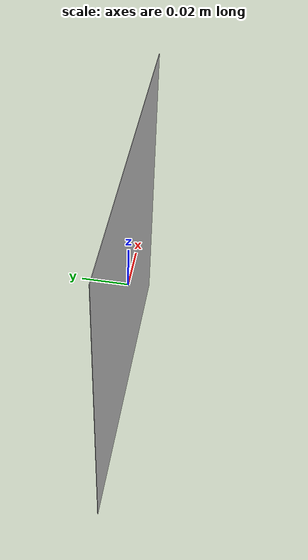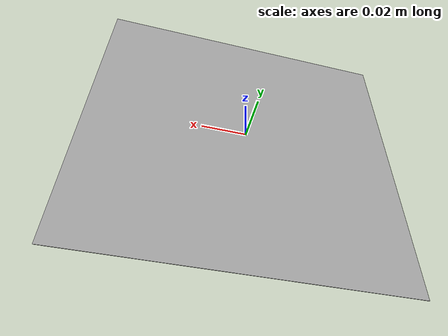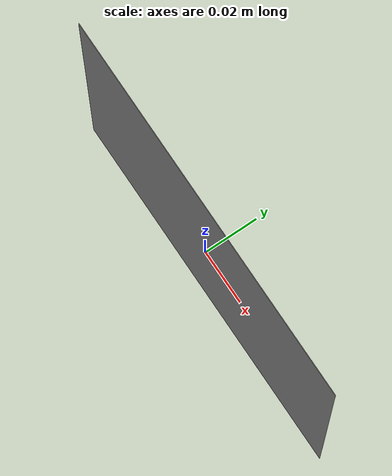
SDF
<?xml version ="1.0"?>
<sdf version="1.6">
  <model name="Aruco_02">
    <static>true</static>
    <link name="link">

      <visual name="visual1">
        <cast_shadows>false</cast_shadows>
	      <pose> 0 0 0 0 0 0</pose>
        <geometry>
          <mesh>
            <uri>model://Aruco_02/meshes/ar2.obj</uri>
	               <scale>1 1 1</scale>
          </mesh>
        </geometry>
      </visual>

    </link>
  </model>
</sdf>
